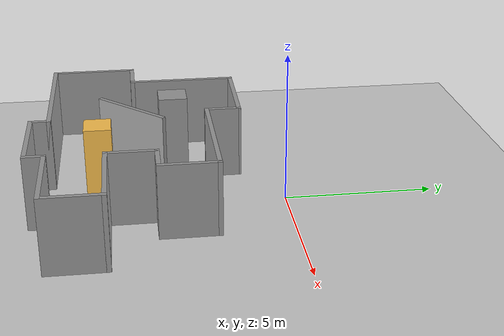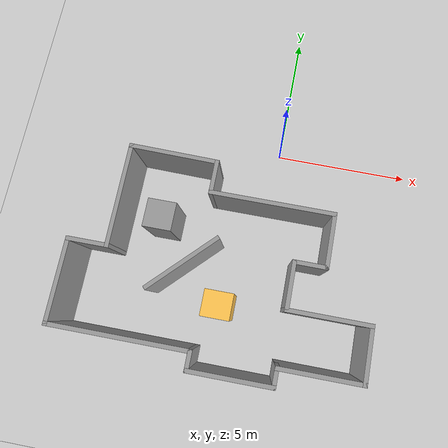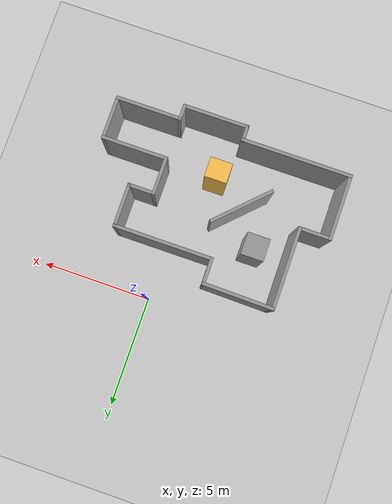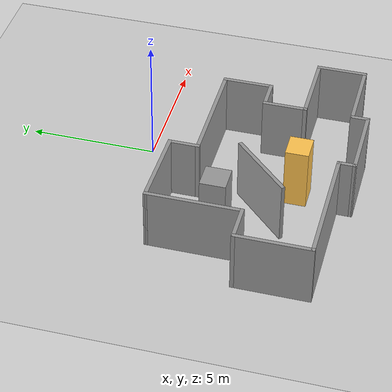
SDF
<sdf version="1.7">
 <world name="default">
  <light name="sun" type="directional">
   <pose>0 0 10 0 -0 0</pose>
   <diffuse>0.8 0.8 0.8 1</diffuse>
   <specular>0.2 0.2 0.2 1</specular>
   <attenuation>
    <range>1000</range>
    <constant>0.9</constant>
    <linear>0.01</linear>
    <quadratic>0.001</quadratic>
   </attenuation>
   <direction>-0.5 0.1 -0.9</direction>
   <spot><inner_angle>0</inner_angle><outer_angle>0</outer_angle><falloff>0</falloff></spot>
  </light>
  <model name="ground_plane">
   <static>1</static>
   <link name="link">
    <collision name="collision">
     <geometry><plane><normal>0 0 1</normal><size>100 100</size></plane></geometry>
     <surface>
      <contact><collide_bitmask>65535</collide_bitmask></contact>
      <friction><ode><mu>100</mu><mu2>50</mu2></ode></friction>
     </surface>
    </collision>
    <visual name="visual">
     <cast_shadows>0</cast_shadows>
     <geometry><plane><normal>0 0 1</normal><size>100 100</size></plane></geometry>
     <material>
      <script><uri>file://media/materials/scripts/gazebo.material</uri><name>Gazebo/Grey</name></script>
     </material>
    </visual>
   </link>
  </model>
  <gravity>0 0 -9.8</gravity>
  <magnetic_field>6e-06 2.3e-05 -4.2e-05</magnetic_field>
  <atmosphere type="adiabatic"/>
  <physics type="ode">
   <max_step_size>0.001</max_step_size>
   <real_time_factor>1</real_time_factor>
   <real_time_update_rate>1000</real_time_update_rate>
  </physics>
  <scene><ambient>0.4 0.4 0.4 1</ambient><background>0.7 0.7 0.7 1</background><shadows>1</shadows></scene>
  <audio><device>default</device></audio>
  <spherical_coordinates>
   <surface_model>EARTH_WGS84</surface_model>
   <latitude_deg>0</latitude_deg>
   <longitude_deg>0</longitude_deg>
   <elevation>0</elevation>
   <heading_deg>0</heading_deg>
  </spherical_coordinates>
  <model name="my_world">
   <pose>-1.295 -4.1925 0 0 -0 0</pose>
   <link name="Wall_0">
    <collision name="Wall_0_Collision">
     <geometry><box><size>3.75 0.15 2.5</size></box></geometry>
     <pose>0 0 1.25 0 -0 0</pose>
    </collision>
    <visual name="Wall_0_Visual">
     <pose>0 0 1.25 0 -0 0</pose>
     <geometry><box><size>3.75 0.15 2.5</size></box></geometry>
     <material>
      <script><uri>file://media/materials/scripts/gazebo.material</uri><name>Gazebo/Grey</name></script>
      <ambient>1 1 1 1</ambient>
     </material>
     <meta><layer>0</layer></meta>
    </visual>
    <pose>-3.925 1.1325 0 0 -0 -1.5708</pose>
   </link>
   <link name="Wall_1">
    <collision name="Wall_1_Collision">
     <geometry><box><size>1.5 0.15 2.5</size></box></geometry>
     <pose>0 0 1.25 0 -0 0</pose>
    </collision>
    <visual name="Wall_1_Visual">
     <pose>0 0 1.25 0 -0 0</pose>
     <geometry><box><size>1.5 0.15 2.5</size></box></geometry>
     <material>
      <script><uri>file://media/materials/scripts/gazebo.material</uri><name>Gazebo/Grey</name></script>
      <ambient>1 1 1 1</ambient>
     </material>
     <meta><layer>0</layer></meta>
    </visual>
    <pose>-4.6 -0.6675 0 0 -0 3.14159</pose>
   </link>
   <link name="Wall_10">
    <collision name="Wall_10_Collision">
     <geometry><box><size>2 0.15 2.5</size></box></geometry>
     <pose>0 0 1.25 0 -0 0</pose>
    </collision>
    <visual name="Wall_10_Visual">
     <pose>0 0 1.25 0 -0 0</pose>
     <geometry><box><size>2 0.15 2.5</size></box></geometry>
     <material>
      <script><uri>file://media/materials/scripts/gazebo.material</uri><name>Gazebo/Grey</name></script>
      <ambient>1 1 1 1</ambient>
     </material>
     <meta><layer>0</layer></meta>
    </visual>
    <pose>5.275 -2.5925 0 0 -0 1.5708</pose>
   </link>
   <link name="Wall_11">
    <collision name="Wall_11_Collision">
     <geometry><box><size>3 0.15 2.5</size></box></geometry>
     <pose>0 0 1.25 0 -0 0</pose>
    </collision>
    <visual name="Wall_11_Visual">
     <pose>0 0 1.25 0 -0 0</pose>
     <geometry><box><size>3 0.15 2.5</size></box></geometry>
     <material>
      <script><uri>file://media/materials/scripts/gazebo.material</uri><name>Gazebo/Grey</name></script>
      <ambient>1 1 1 1</ambient>
     </material>
     <meta><layer>0</layer></meta>
    </visual>
    <pose>3.85 -1.6675 0 0 -0 3.14159</pose>
   </link>
   <link name="Wall_12">
    <collision name="Wall_12_Collision">
     <geometry><box><size>1.75 0.15 2.5</size></box></geometry>
     <pose>0 0 1.25 0 -0 0</pose>
    </collision>
    <visual name="Wall_12_Visual">
     <pose>0 0 1.25 0 -0 0</pose>
     <geometry><box><size>1.75 0.15 2.5</size></box></geometry>
     <material>
      <script><uri>file://media/materials/scripts/gazebo.material</uri><name>Gazebo/Grey</name></script>
      <ambient>1 1 1 1</ambient>
     </material>
     <meta><layer>0</layer></meta>
    </visual>
    <pose>2.425 -0.8675 0 0 -0 1.5708</pose>
   </link>
   <link name="Wall_13">
    <collision name="Wall_13_Collision">
     <geometry><box><size>1.25 0.15 2.5</size></box></geometry>
     <pose>0 0 1.25 0 -0 0</pose>
    </collision>
    <visual name="Wall_13_Visual">
     <pose>0 0 1.25 0 -0 0</pose>
     <geometry><box><size>1.25 0.15 2.5</size></box></geometry>
     <material>
      <script><uri>file://media/materials/scripts/gazebo.material</uri><name>Gazebo/Grey</name></script>
      <ambient>1 1 1 1</ambient>
     </material>
     <meta><layer>0</layer></meta>
    </visual>
    <pose>2.975 -0.0675 0 0 -0 0</pose>
   </link>
   <link name="Wall_14">
    <collision name="Wall_14_Collision">
     <geometry><box><size>2 0.15 2.5</size></box></geometry>
     <pose>0 0 1.25 0 -0 0</pose>
    </collision>
    <visual name="Wall_14_Visual">
     <pose>0 0 1.25 0 -0 0</pose>
     <geometry><box><size>2 0.15 2.5</size></box></geometry>
     <material>
      <script><uri>file://media/materials/scripts/gazebo.material</uri><name>Gazebo/Grey</name></script>
      <ambient>1 1 1 1</ambient>
     </material>
     <meta><layer>0</layer></meta>
    </visual>
    <pose>3.525 0.8575 0 0 -0 1.5708</pose>
   </link>
   <link name="Wall_15">
    <collision name="Wall_15_Collision">
     <geometry><box><size>4.5 0.15 2.5</size></box></geometry>
     <pose>0 0 1.25 0 -0 0</pose>
    </collision>
    <visual name="Wall_15_Visual">
     <pose>0 0 1.25 0 -0 0</pose>
     <geometry><box><size>4.5 0.15 2.5</size></box></geometry>
     <material>
      <script><uri>file://media/materials/scripts/gazebo.material</uri><name>Gazebo/Grey</name></script>
      <ambient>1 1 1 1</ambient>
     </material>
     <meta><layer>0</layer></meta>
    </visual>
    <pose>1.35 1.7825 0 0 -0 3.14159</pose>
   </link>
   <link name="Wall_16">
    <collision name="Wall_16_Collision">
     <geometry><box><size>1.25 0.15 2.5</size></box></geometry>
     <pose>0 0 1.25 0 -0 0</pose>
    </collision>
    <visual name="Wall_16_Visual">
     <pose>0 0 1.25 0 -0 0</pose>
     <geometry><box><size>1.25 0.15 2.5</size></box></geometry>
     <material>
      <script><uri>file://media/materials/scripts/gazebo.material</uri><name>Gazebo/Grey</name></script>
      <ambient>1 1 1 1</ambient>
     </material>
     <meta><layer>0</layer></meta>
    </visual>
    <pose>-0.825 2.3325 0 0 -0 1.5708</pose>
   </link>
   <link name="Wall_17">
    <collision name="Wall_17_Collision">
     <geometry><box><size>3.2504 0.15 2.5</size></box></geometry>
     <pose>0 0 1.25 0 -0 0</pose>
    </collision>
    <visual name="Wall_17_Visual">
     <pose>0 0 1.25 0 -0 0</pose>
     <geometry><box><size>3.2504 0.15 2.5</size></box></geometry>
     <material>
      <script><uri>file://media/materials/scripts/gazebo.material</uri><name>Gazebo/Grey</name></script>
      <ambient>1 1 1 1</ambient>
     </material>
     <meta><layer>0</layer></meta>
    </visual>
    <pose>-2.375 2.9075 0 0 -0 3.12547</pose>
   </link>
   <link name="Wall_19">
    <collision name="Wall_19_Collision">
     <geometry><box><size>1.01 1 2.5</size></box></geometry>
     <pose>0 0 1.25 0 -0 0</pose>
    </collision>
    <visual name="Wall_19_Visual">
     <pose>0 0 1.25 0 -0 0</pose>
     <geometry><box><size>1.01 1 2.5</size></box></geometry>
     <material>
      <script><uri>file://media/materials/scripts/gazebo.material</uri><name>Gazebo/Grey</name></script>
      <ambient>1 1 1 1</ambient>
     </material>
     <meta><layer>0</layer></meta>
    </visual>
    <pose>-2.4 0.6925 0 0 -0 0</pose>
   </link>
   <link name="Wall_2">
    <collision name="Wall_2_Collision">
     <geometry><box><size>3 0.15 2.5</size></box></geometry>
     <pose>0 0 1.25 0 -0 0</pose>
    </collision>
    <visual name="Wall_2_Visual">
     <pose>0 0 1.25 0 -0 0</pose>
     <geometry><box><size>3 0.15 2.5</size></box></geometry>
     <material>
      <script><uri>file://media/materials/scripts/gazebo.material</uri><name>Gazebo/Grey</name></script>
      <ambient>1 1 1 1</ambient>
     </material>
     <meta><layer>0</layer></meta>
    </visual>
    <pose>-5.275 -2.0925 0 0 -0 -1.5708</pose>
   </link>
   <link name="Wall_21">
    <collision name="Wall_21_Collision">
     <geometry><box><size>1 0.9 2.5</size></box></geometry>
     <pose>0 0 1.25 0 -0 0</pose>
    </collision>
    <visual name="Wall_21_Visual">
     <pose>0 0 1.25 0 -0 0</pose>
     <geometry><box><size>1 0.9 2.5</size></box></geometry>
     <material>
      <script><uri>file://media/materials/scripts/gazebo.material</uri><name>Gazebo/Grey</name></script>
      <ambient>1 0.764706 0.305882 1</ambient>
     </material>
     <meta><layer>0</layer></meta>
    </visual>
    <pose>0.135 -1.9175 0 0 -0 0</pose>
   </link>
   <link name="Wall_23">
    <collision name="Wall_23_Collision">
     <geometry><box><size>3 0.15 2.5</size></box></geometry>
     <pose>0 0 1.25 0 -0 0</pose>
    </collision>
    <visual name="Wall_23_Visual">
     <pose>0 0 1.25 0 -0 0</pose>
     <geometry><box><size>3 0.15 2.5</size></box></geometry>
     <material>
      <script><uri>file://media/materials/scripts/gazebo.material</uri><name>Gazebo/Grey</name></script>
      <ambient>1 1 1 1</ambient>
     </material>
     <meta><layer>0</layer></meta>
    </visual>
    <pose>-1.29737 -0.769873 0 0 -0 0.785398</pose>
   </link>
   <link name="Wall_3">
    <collision name="Wall_3_Collision">
     <geometry><box><size>5 0.15 2.5</size></box></geometry>
     <pose>0 0 1.25 0 -0 0</pose>
    </collision>
    <visual name="Wall_3_Visual">
     <pose>0 0 1.25 0 -0 0</pose>
     <geometry><box><size>5 0.15 2.5</size></box></geometry>
     <material>
      <script><uri>file://media/materials/scripts/gazebo.material</uri><name>Gazebo/Grey</name></script>
      <ambient>1 1 1 1</ambient>
     </material>
     <meta><layer>0</layer></meta>
    </visual>
    <pose>-2.85 -3.5175 0 0 -0 0</pose>
   </link>
   <link name="Wall_4">
    <collision name="Wall_4_Collision">
     <geometry><box><size>0.75 0.15 2.5</size></box></geometry>
     <pose>0 0 1.25 0 -0 0</pose>
    </collision>
    <visual name="Wall_4_Visual">
     <pose>0 0 1.25 0 -0 0</pose>
     <geometry><box><size>0.75 0.15 2.5</size></box></geometry>
     <material>
      <script><uri>file://media/materials/scripts/gazebo.material</uri><name>Gazebo/Grey</name></script>
      <ambient>1 1 1 1</ambient>
     </material>
     <meta><layer>0</layer></meta>
    </visual>
    <pose>-0.425 -3.8175 0 0 -0 -1.5708</pose>
   </link>
   <link name="Wall_5">
    <collision name="Wall_5_Collision">
     <geometry><box><size>3 0.15 2.5</size></box></geometry>
     <pose>0 0 1.25 0 -0 0</pose>
    </collision>
    <visual name="Wall_5_Visual">
     <pose>0 0 1.25 0 -0 0</pose>
     <geometry><box><size>3 0.15 2.5</size></box></geometry>
     <material>
      <script><uri>file://media/materials/scripts/gazebo.material</uri><name>Gazebo/Grey</name></script>
      <ambient>1 1 1 1</ambient>
     </material>
     <meta><layer>0</layer></meta>
    </visual>
    <pose>1 -4.1175 0 0 -0 0</pose>
   </link>
   <link name="Wall_8">
    <collision name="Wall_8_Collision">
     <geometry><box><size>0.75 0.15 2.5</size></box></geometry>
     <pose>0 0 1.25 0 -0 0</pose>
    </collision>
    <visual name="Wall_8_Visual">
     <pose>0 0 1.25 0 -0 0</pose>
     <geometry><box><size>0.75 0.15 2.5</size></box></geometry>
     <material>
      <script><uri>file://media/materials/scripts/gazebo.material</uri><name>Gazebo/Grey</name></script>
      <ambient>1 1 1 1</ambient>
     </material>
     <meta><layer>0</layer></meta>
    </visual>
    <pose>2.425 -3.8175 0 0 -0 1.5708</pose>
   </link>
   <link name="Wall_9">
    <collision name="Wall_9_Collision">
     <geometry><box><size>3 0.15 2.5</size></box></geometry>
     <pose>0 0 1.25 0 -0 0</pose>
    </collision>
    <visual name="Wall_9_Visual">
     <pose>0 0 1.25 0 -0 0</pose>
     <geometry><box><size>3 0.15 2.5</size></box></geometry>
     <material>
      <script><uri>file://media/materials/scripts/gazebo.material</uri><name>Gazebo/Grey</name></script>
      <ambient>1 1 1 1</ambient>
     </material>
     <meta><layer>0</layer></meta>
    </visual>
    <pose>3.85 -3.5175 0 0 -0 0</pose>
   </link>
   <static>1</static>
  </model>
 </world>
</sdf>
